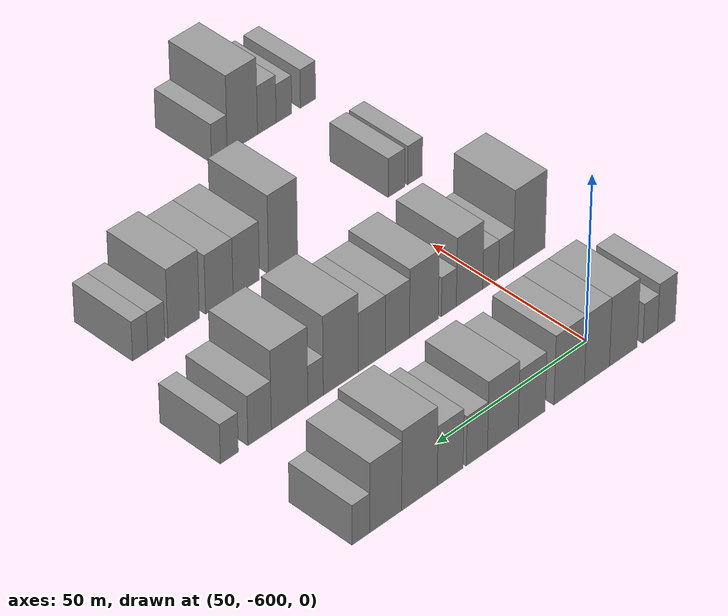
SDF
<sdf version="1.6">
 <world name="default">
  <model name="building_1">
   <static>1</static>
   <pose>50.0000 -616.9016 0 0.000000 0.000000 0.000000</pose>
   <link name="link">
    <pose>0 0 7.50 0 0 0</pose>
    <collision name="collision"><geometry><box><size>20.0000 6.1968 15.0000</size></box></geometry></collision>
    <visual name="visual">
     <cast_shadows>0</cast_shadows>
     <geometry><box><size>20.0000 6.1968 15.0000</size></box></geometry>
     <material>
      <script>
       <uri>model://grey_wall/materials/scripts</uri>
       <uri>model://grey_wall/materials/textures</uri>
       <name>vrc/grey_wall</name>
      </script>
     </material>
    </visual>
   </link>
  </model>
  <model name="building_2">
   <static>1</static>
   <pose>50.0000 -611.2636 0 0.000000 0.000000 0.000000</pose>
   <link name="link">
    <pose>0 0 6.00 0 0 0</pose>
    <collision name="collision"><geometry><box><size>20.0000 5.0791 12.0000</size></box></geometry></collision>
    <visual name="visual">
     <cast_shadows>0</cast_shadows>
     <geometry><box><size>20.0000 5.0791 12.0000</size></box></geometry>
     <material>
      <script>
       <uri>model://grey_wall/materials/scripts</uri>
       <uri>model://grey_wall/materials/textures</uri>
       <name>vrc/grey_wall</name>
      </script>
     </material>
    </visual>
   </link>
  </model>
  <model name="building_3">
   <static>1</static>
   <pose>50.0000 -601.9387 0 0.000000 0.000000 0.000000</pose>
   <link name="link">
    <pose>0 0 10.50 0 0 0</pose>
    <collision name="collision"><geometry><box><size>20.0000 9.5707 21.0000</size></box></geometry></collision>
    <visual name="visual">
     <cast_shadows>0</cast_shadows>
     <geometry><box><size>20.0000 9.5707 21.0000</size></box></geometry>
     <material>
      <script>
       <uri>model://grey_wall/materials/scripts</uri>
       <uri>model://grey_wall/materials/textures</uri>
       <name>vrc/grey_wall</name>
      </script>
     </material>
    </visual>
   </link>
  </model>
  <model name="building_4">
   <static>1</static>
   <pose>50.0000 -592.8870 0 0.000000 0.000000 0.000000</pose>
   <link name="link">
    <pose>0 0 10.50 0 0 0</pose>
    <collision name="collision"><geometry><box><size>20.0000 8.5327 21.0000</size></box></geometry></collision>
    <visual name="visual">
     <cast_shadows>0</cast_shadows>
     <geometry><box><size>20.0000 8.5327 21.0000</size></box></geometry>
     <material>
      <script>
       <uri>model://grey_wall/materials/scripts</uri>
       <uri>model://grey_wall/materials/textures</uri>
       <name>vrc/grey_wall</name>
      </script>
     </material>
    </visual>
   </link>
  </model>
  <model name="building_5">
   <static>1</static>
   <pose>50.0000 -583.4798 0 0.000000 0.000000 0.000000</pose>
   <link name="link">
    <pose>0 0 10.50 0 0 0</pose>
    <collision name="collision"><geometry><box><size>20.0000 10.2817 21.0000</size></box></geometry></collision>
    <visual name="visual">
     <cast_shadows>0</cast_shadows>
     <geometry><box><size>20.0000 10.2817 21.0000</size></box></geometry>
     <material>
      <script>
       <uri>model://grey_wall/materials/scripts</uri>
       <uri>model://grey_wall/materials/textures</uri>
       <name>vrc/grey_wall</name>
      </script>
     </material>
    </visual>
   </link>
  </model>
  <model name="building_6">
   <static>1</static>
   <pose>50.0000 -570.8567 0 0.000000 0.000000 0.000000</pose>
   <link name="link">
    <pose>0 0 9.00 0 0 0</pose>
    <collision name="collision"><geometry><box><size>20.0000 8.9645 18.0000</size></box></geometry></collision>
    <visual name="visual">
     <cast_shadows>0</cast_shadows>
     <geometry><box><size>20.0000 8.9645 18.0000</size></box></geometry>
     <material>
      <script>
       <uri>model://grey_wall/materials/scripts</uri>
       <uri>model://grey_wall/materials/textures</uri>
       <name>vrc/grey_wall</name>
      </script>
     </material>
    </visual>
   </link>
  </model>
  <model name="building_7">
   <static>1</static>
   <pose>50.0000 -561.2951 0 0.000000 0.000000 0.000000</pose>
   <link name="link">
    <pose>0 0 10.50 0 0 0</pose>
    <collision name="collision"><geometry><box><size>20.0000 10.1586 21.0000</size></box></geometry></collision>
    <visual name="visual">
     <cast_shadows>0</cast_shadows>
     <geometry><box><size>20.0000 10.1586 21.0000</size></box></geometry>
     <material>
      <script>
       <uri>model://grey_wall/materials/scripts</uri>
       <uri>model://grey_wall/materials/textures</uri>
       <name>vrc/grey_wall</name>
      </script>
     </material>
    </visual>
   </link>
  </model>
  <model name="building_8">
   <static>1</static>
   <pose>50.0000 -552.7246 0 0.000000 0.000000 0.000000</pose>
   <link name="link">
    <pose>0 0 7.50 0 0 0</pose>
    <collision name="collision"><geometry><box><size>20.0000 6.9825 15.0000</size></box></geometry></collision>
    <visual name="visual">
     <cast_shadows>0</cast_shadows>
     <geometry><box><size>20.0000 6.9825 15.0000</size></box></geometry>
     <material>
      <script>
       <uri>model://grey_wall/materials/scripts</uri>
       <uri>model://grey_wall/materials/textures</uri>
       <name>vrc/grey_wall</name>
      </script>
     </material>
    </visual>
   </link>
  </model>
  <model name="building_9">
   <static>1</static>
   <pose>50.0000 -544.0356 0 0.000000 0.000000 0.000000</pose>
   <link name="link">
    <pose>0 0 9.00 0 0 0</pose>
    <collision name="collision"><geometry><box><size>20.0000 8.3956 18.0000</size></box></geometry></collision>
    <visual name="visual">
     <cast_shadows>0</cast_shadows>
     <geometry><box><size>20.0000 8.3956 18.0000</size></box></geometry>
     <material>
      <script>
       <uri>model://grey_wall/materials/scripts</uri>
       <uri>model://grey_wall/materials/textures</uri>
       <name>vrc/grey_wall</name>
      </script>
     </material>
    </visual>
   </link>
  </model>
  <model name="building_10">
   <static>1</static>
   <pose>50.0000 -534.1240 0 0.000000 0.000000 0.000000</pose>
   <link name="link">
    <pose>0 0 12.00 0 0 0</pose>
    <collision name="collision"><geometry><box><size>20.0000 11.4277 24.0000</size></box></geometry></collision>
    <visual name="visual">
     <cast_shadows>0</cast_shadows>
     <geometry><box><size>20.0000 11.4277 24.0000</size></box></geometry>
     <material>
      <script>
       <uri>model://grey_wall/materials/scripts</uri>
       <uri>model://grey_wall/materials/textures</uri>
       <name>vrc/grey_wall</name>
      </script>
     </material>
    </visual>
   </link>
  </model>
  <model name="building_11">
   <static>1</static>
   <pose>50.0000 -523.3517 0 0.000000 0.000000 0.000000</pose>
   <link name="link">
    <pose>0 0 10.50 0 0 0</pose>
    <collision name="collision"><geometry><box><size>20.0000 10.1170 21.0000</size></box></geometry></collision>
    <visual name="visual">
     <cast_shadows>0</cast_shadows>
     <geometry><box><size>20.0000 10.1170 21.0000</size></box></geometry>
     <material>
      <script>
       <uri>model://grey_wall/materials/scripts</uri>
       <uri>model://grey_wall/materials/textures</uri>
       <name>vrc/grey_wall</name>
      </script>
     </material>
    </visual>
   </link>
  </model>
  <model name="building_12">
   <static>1</static>
   <pose>50.0000 -515.4805 0 0.000000 0.000000 0.000000</pose>
   <link name="link">
    <pose>0 0 6.00 0 0 0</pose>
    <collision name="collision"><geometry><box><size>20.0000 5.6252 12.0000</size></box></geometry></collision>
    <visual name="visual">
     <cast_shadows>0</cast_shadows>
     <geometry><box><size>20.0000 5.6252 12.0000</size></box></geometry>
     <material>
      <script>
       <uri>model://grey_wall/materials/scripts</uri>
       <uri>model://grey_wall/materials/textures</uri>
       <name>vrc/grey_wall</name>
      </script>
     </material>
    </visual>
   </link>
  </model>
  <model name="building_134">
   <static>1</static>
   <pose>90.0000 -612.5213 0 0.000000 0.000000 0.000000</pose>
   <link name="link">
    <pose>0 0 12.00 0 0 0</pose>
    <collision name="collision"><geometry><box><size>20.0000 10.9574 24.0000</size></box></geometry></collision>
    <visual name="visual">
     <cast_shadows>0</cast_shadows>
     <geometry><box><size>20.0000 10.9574 24.0000</size></box></geometry>
     <material>
      <script>
       <uri>model://grey_wall/materials/scripts</uri>
       <uri>model://grey_wall/materials/textures</uri>
       <name>vrc/grey_wall</name>
      </script>
     </material>
    </visual>
   </link>
  </model>
  <model name="building_135">
   <static>1</static>
   <pose>90.0000 -604.4865 0 0.000000 0.000000 0.000000</pose>
   <link name="link">
    <pose>0 0 6.00 0 0 0</pose>
    <collision name="collision"><geometry><box><size>20.0000 5.1121 12.0000</size></box></geometry></collision>
    <visual name="visual">
     <cast_shadows>0</cast_shadows>
     <geometry><box><size>20.0000 5.1121 12.0000</size></box></geometry>
     <material>
      <script>
       <uri>model://grey_wall/materials/scripts</uri>
       <uri>model://grey_wall/materials/textures</uri>
       <name>vrc/grey_wall</name>
      </script>
     </material>
    </visual>
   </link>
  </model>
  <model name="building_136">
   <static>1</static>
   <pose>90.0000 -599.1985 0 0.000000 0.000000 0.000000</pose>
   <link name="link">
    <pose>0 0 6.00 0 0 0</pose>
    <collision name="collision"><geometry><box><size>20.0000 5.4640 12.0000</size></box></geometry></collision>
    <visual name="visual">
     <cast_shadows>0</cast_shadows>
     <geometry><box><size>20.0000 5.4640 12.0000</size></box></geometry>
     <material>
      <script>
       <uri>model://grey_wall/materials/scripts</uri>
       <uri>model://grey_wall/materials/textures</uri>
       <name>vrc/grey_wall</name>
      </script>
     </material>
    </visual>
   </link>
  </model>
  <model name="building_137">
   <static>1</static>
   <pose>90.0000 -591.9716 0 0.000000 0.000000 0.000000</pose>
   <link name="link">
    <pose>0 0 10.50 0 0 0</pose>
    <collision name="collision"><geometry><box><size>20.0000 8.9897 21.0000</size></box></geometry></collision>
    <visual name="visual">
     <cast_shadows>0</cast_shadows>
     <geometry><box><size>20.0000 8.9897 21.0000</size></box></geometry>
     <material>
      <script>
       <uri>model://grey_wall/materials/scripts</uri>
       <uri>model://grey_wall/materials/textures</uri>
       <name>vrc/grey_wall</name>
      </script>
     </material>
    </visual>
   </link>
  </model>
  <model name="building_138">
   <static>1</static>
   <pose>90.0000 -584.9315 0 0.000000 0.000000 0.000000</pose>
   <link name="link">
    <pose>0 0 6.00 0 0 0</pose>
    <collision name="collision"><geometry><box><size>20.0000 5.0904 12.0000</size></box></geometry></collision>
    <visual name="visual">
     <cast_shadows>0</cast_shadows>
     <geometry><box><size>20.0000 5.0904 12.0000</size></box></geometry>
     <material>
      <script>
       <uri>model://grey_wall/materials/scripts</uri>
       <uri>model://grey_wall/materials/textures</uri>
       <name>vrc/grey_wall</name>
      </script>
     </material>
    </visual>
   </link>
  </model>
  <model name="building_139">
   <static>1</static>
   <pose>90.0000 -576.5448 0 0.000000 0.000000 0.000000</pose>
   <link name="link">
    <pose>0 0 10.50 0 0 0</pose>
    <collision name="collision"><geometry><box><size>20.0000 9.6830 21.0000</size></box></geometry></collision>
    <visual name="visual">
     <cast_shadows>0</cast_shadows>
     <geometry><box><size>20.0000 9.6830 21.0000</size></box></geometry>
     <material>
      <script>
       <uri>model://grey_wall/materials/scripts</uri>
       <uri>model://grey_wall/materials/textures</uri>
       <name>vrc/grey_wall</name>
      </script>
     </material>
    </visual>
   </link>
  </model>
  <model name="building_140">
   <static>1</static>
   <pose>90.0000 -567.6874 0 0.000000 0.000000 0.000000</pose>
   <link name="link">
    <pose>0 0 9.00 0 0 0</pose>
    <collision name="collision"><geometry><box><size>20.0000 8.0319 18.0000</size></box></geometry></collision>
    <visual name="visual">
     <cast_shadows>0</cast_shadows>
     <geometry><box><size>20.0000 8.0319 18.0000</size></box></geometry>
     <material>
      <script>
       <uri>model://grey_wall/materials/scripts</uri>
       <uri>model://grey_wall/materials/textures</uri>
       <name>vrc/grey_wall</name>
      </script>
     </material>
    </visual>
   </link>
  </model>
  <model name="building_141">
   <static>1</static>
   <pose>90.0000 -559.2264 0 0.000000 0.000000 0.000000</pose>
   <link name="link">
    <pose>0 0 9.00 0 0 0</pose>
    <collision name="collision"><geometry><box><size>20.0000 8.8902 18.0000</size></box></geometry></collision>
    <visual name="visual">
     <cast_shadows>0</cast_shadows>
     <geometry><box><size>20.0000 8.8902 18.0000</size></box></geometry>
     <material>
      <script>
       <uri>model://grey_wall/materials/scripts</uri>
       <uri>model://grey_wall/materials/textures</uri>
       <name>vrc/grey_wall</name>
      </script>
     </material>
    </visual>
   </link>
  </model>
  <model name="building_142">
   <static>1</static>
   <pose>90.0000 -549.0619 0 0.000000 0.000000 0.000000</pose>
   <link name="link">
    <pose>0 0 12.00 0 0 0</pose>
    <collision name="collision"><geometry><box><size>20.0000 11.4388 24.0000</size></box></geometry></collision>
    <visual name="visual">
     <cast_shadows>0</cast_shadows>
     <geometry><box><size>20.0000 11.4388 24.0000</size></box></geometry>
     <material>
      <script>
       <uri>model://grey_wall/materials/scripts</uri>
       <uri>model://grey_wall/materials/textures</uri>
       <name>vrc/grey_wall</name>
      </script>
     </material>
    </visual>
   </link>
  </model>
  <model name="building_143">
   <static>1</static>
   <pose>90.0000 -540.8584 0 0.000000 0.000000 0.000000</pose>
   <link name="link">
    <pose>0 0 6.00 0 0 0</pose>
    <collision name="collision"><geometry><box><size>20.0000 4.9681 12.0000</size></box></geometry></collision>
    <visual name="visual">
     <cast_shadows>0</cast_shadows>
     <geometry><box><size>20.0000 4.9681 12.0000</size></box></geometry>
     <material>
      <script>
       <uri>model://grey_wall/materials/scripts</uri>
       <uri>model://grey_wall/materials/textures</uri>
       <name>vrc/grey_wall</name>
      </script>
     </material>
    </visual>
   </link>
  </model>
  <model name="building_144">
   <static>1</static>
   <pose>90.0000 -532.4957 0 0.000000 0.000000 0.000000</pose>
   <link name="link">
    <pose>0 0 12.00 0 0 0</pose>
    <collision name="collision"><geometry><box><size>20.0000 11.7573 24.0000</size></box></geometry></collision>
    <visual name="visual">
     <cast_shadows>0</cast_shadows>
     <geometry><box><size>20.0000 11.7573 24.0000</size></box></geometry>
     <material>
      <script>
       <uri>model://grey_wall/materials/scripts</uri>
       <uri>model://grey_wall/materials/textures</uri>
       <name>vrc/grey_wall</name>
      </script>
     </material>
    </visual>
   </link>
  </model>
  <model name="building_145">
   <static>1</static>
   <pose>90.0000 -522.8952 0 0.000000 0.000000 0.000000</pose>
   <link name="link">
    <pose>0 0 7.50 0 0 0</pose>
    <collision name="collision"><geometry><box><size>20.0000 7.4438 15.0000</size></box></geometry></collision>
    <visual name="visual">
     <cast_shadows>0</cast_shadows>
     <geometry><box><size>20.0000 7.4438 15.0000</size></box></geometry>
     <material>
      <script>
       <uri>model://grey_wall/materials/scripts</uri>
       <uri>model://grey_wall/materials/textures</uri>
       <name>vrc/grey_wall</name>
      </script>
     </material>
    </visual>
   </link>
  </model>
  <model name="building_146">
   <static>1</static>
   <pose>90.0000 -513.3403 0 0.000000 0.000000 0.000000</pose>
   <link name="link">
    <pose>0 0 6.00 0 0 0</pose>
    <collision name="collision"><geometry><box><size>20.0000 5.6659 12.0000</size></box></geometry></collision>
    <visual name="visual">
     <cast_shadows>0</cast_shadows>
     <geometry><box><size>20.0000 5.6659 12.0000</size></box></geometry>
     <material>
      <script>
       <uri>model://grey_wall/materials/scripts</uri>
       <uri>model://grey_wall/materials/textures</uri>
       <name>vrc/grey_wall</name>
      </script>
     </material>
    </visual>
   </link>
  </model>
  <model name="building_286">
   <static>1</static>
   <pose>130.0000 -614.4628 0 0.000000 0.000000 0.000000</pose>
   <link name="link">
    <pose>0 0 6.00 0 0 0</pose>
    <collision name="collision"><geometry><box><size>20.0000 5.0744 12.0000</size></box></geometry></collision>
    <visual name="visual">
     <cast_shadows>0</cast_shadows>
     <geometry><box><size>20.0000 5.0744 12.0000</size></box></geometry>
     <material>
      <script>
       <uri>model://grey_wall/materials/scripts</uri>
       <uri>model://grey_wall/materials/textures</uri>
       <name>vrc/grey_wall</name>
      </script>
     </material>
    </visual>
   </link>
  </model>
  <model name="building_287">
   <static>1</static>
   <pose>130.0000 -608.0292 0 0.000000 0.000000 0.000000</pose>
   <link name="link">
    <pose>0 0 6.00 0 0 0</pose>
    <collision name="collision"><geometry><box><size>20.0000 5.7929 12.0000</size></box></geometry></collision>
    <visual name="visual">
     <cast_shadows>0</cast_shadows>
     <geometry><box><size>20.0000 5.7929 12.0000</size></box></geometry>
     <material>
      <script>
       <uri>model://grey_wall/materials/scripts</uri>
       <uri>model://grey_wall/materials/textures</uri>
       <name>vrc/grey_wall</name>
      </script>
     </material>
    </visual>
   </link>
  </model>
  <model name="building_288">
   <static>1</static>
   <pose>130.0000 -569.5436 0 0.000000 0.000000 0.000000</pose>
   <link name="link">
    <pose>0 0 12.00 0 0 0</pose>
    <collision name="collision"><geometry><box><size>20.0000 9.7261 24.0000</size></box></geometry></collision>
    <visual name="visual">
     <cast_shadows>0</cast_shadows>
     <geometry><box><size>20.0000 9.7261 24.0000</size></box></geometry>
     <material>
      <script>
       <uri>model://grey_wall/materials/scripts</uri>
       <uri>model://grey_wall/materials/textures</uri>
       <name>vrc/grey_wall</name>
      </script>
     </material>
    </visual>
   </link>
  </model>
  <model name="building_289">
   <static>1</static>
   <pose>130.0000 -557.3551 0 0.000000 0.000000 0.000000</pose>
   <link name="link">
    <pose>0 0 9.00 0 0 0</pose>
    <collision name="collision"><geometry><box><size>20.0000 8.6508 18.0000</size></box></geometry></collision>
    <visual name="visual">
     <cast_shadows>0</cast_shadows>
     <geometry><box><size>20.0000 8.6508 18.0000</size></box></geometry>
     <material>
      <script>
       <uri>model://grey_wall/materials/scripts</uri>
       <uri>model://grey_wall/materials/textures</uri>
       <name>vrc/grey_wall</name>
      </script>
     </material>
    </visual>
   </link>
  </model>
  <model name="building_290">
   <static>1</static>
   <pose>130.0000 -548.5409 0 0.000000 0.000000 0.000000</pose>
   <link name="link">
    <pose>0 0 9.00 0 0 0</pose>
    <collision name="collision"><geometry><box><size>20.0000 8.9777 18.0000</size></box></geometry></collision>
    <visual name="visual">
     <cast_shadows>0</cast_shadows>
     <geometry><box><size>20.0000 8.9777 18.0000</size></box></geometry>
     <material>
      <script>
       <uri>model://grey_wall/materials/scripts</uri>
       <uri>model://grey_wall/materials/textures</uri>
       <name>vrc/grey_wall</name>
      </script>
     </material>
    </visual>
   </link>
  </model>
  <model name="building_291">
   <static>1</static>
   <pose>130.0000 -536.9700 0 0.000000 0.000000 0.000000</pose>
   <link name="link">
    <pose>0 0 10.50 0 0 0</pose>
    <collision name="collision"><geometry><box><size>20.0000 10.1640 21.0000</size></box></geometry></collision>
    <visual name="visual">
     <cast_shadows>0</cast_shadows>
     <geometry><box><size>20.0000 10.1640 21.0000</size></box></geometry>
     <material>
      <script>
       <uri>model://grey_wall/materials/scripts</uri>
       <uri>model://grey_wall/materials/textures</uri>
       <name>vrc/grey_wall</name>
      </script>
     </material>
    </visual>
   </link>
  </model>
  <model name="building_292">
   <static>1</static>
   <pose>130.0000 -528.1808 0 0.000000 0.000000 0.000000</pose>
   <link name="link">
    <pose>0 0 6.00 0 0 0</pose>
    <collision name="collision"><geometry><box><size>20.0000 5.4144 12.0000</size></box></geometry></collision>
    <visual name="visual">
     <cast_shadows>0</cast_shadows>
     <geometry><box><size>20.0000 5.4144 12.0000</size></box></geometry>
     <material>
      <script>
       <uri>model://grey_wall/materials/scripts</uri>
       <uri>model://grey_wall/materials/textures</uri>
       <name>vrc/grey_wall</name>
      </script>
     </material>
    </visual>
   </link>
  </model>
  <model name="building_293">
   <static>1</static>
   <pose>130.0000 -523.0255 0 0.000000 0.000000 0.000000</pose>
   <link name="link">
    <pose>0 0 6.00 0 0 0</pose>
    <collision name="collision"><geometry><box><size>20.0000 4.8963 12.0000</size></box></geometry></collision>
    <visual name="visual">
     <cast_shadows>0</cast_shadows>
     <geometry><box><size>20.0000 4.8963 12.0000</size></box></geometry>
     <material>
      <script>
       <uri>model://grey_wall/materials/scripts</uri>
       <uri>model://grey_wall/materials/textures</uri>
       <name>vrc/grey_wall</name>
      </script>
     </material>
    </visual>
   </link>
  </model>
  <model name="building_415">
   <static>1</static>
   <pose>170.0000 -617.3420 0 0.000000 0.000000 0.000000</pose>
   <link name="link">
    <pose>0 0 6.00 0 0 0</pose>
    <collision name="collision"><geometry><box><size>20.0000 5.3160 12.0000</size></box></geometry></collision>
    <visual name="visual">
     <cast_shadows>0</cast_shadows>
     <geometry><box><size>20.0000 5.3160 12.0000</size></box></geometry>
     <material>
      <script>
       <uri>model://grey_wall/materials/scripts</uri>
       <uri>model://grey_wall/materials/textures</uri>
       <name>vrc/grey_wall</name>
      </script>
     </material>
    </visual>
   </link>
  </model>
  <model name="building_416">
   <static>1</static>
   <pose>170.0000 -608.9868 0 0.000000 0.000000 0.000000</pose>
   <link name="link">
    <pose>0 0 6.00 0 0 0</pose>
    <collision name="collision"><geometry><box><size>20.0000 5.3945 12.0000</size></box></geometry></collision>
    <visual name="visual">
     <cast_shadows>0</cast_shadows>
     <geometry><box><size>20.0000 5.3945 12.0000</size></box></geometry>
     <material>
      <script>
       <uri>model://grey_wall/materials/scripts</uri>
       <uri>model://grey_wall/materials/textures</uri>
       <name>vrc/grey_wall</name>
      </script>
     </material>
    </visual>
   </link>
  </model>
  <model name="building_417">
   <static>1</static>
   <pose>170.0000 -603.0850 0 0.000000 0.000000 0.000000</pose>
   <link name="link">
    <pose>0 0 7.50 0 0 0</pose>
    <collision name="collision"><geometry><box><size>20.0000 6.4092 15.0000</size></box></geometry></collision>
    <visual name="visual">
     <cast_shadows>0</cast_shadows>
     <geometry><box><size>20.0000 6.4092 15.0000</size></box></geometry>
     <material>
      <script>
       <uri>model://grey_wall/materials/scripts</uri>
       <uri>model://grey_wall/materials/textures</uri>
       <name>vrc/grey_wall</name>
      </script>
     </material>
    </visual>
   </link>
  </model>
  <model name="building_418">
   <static>1</static>
   <pose>170.0000 -594.6996 0 0.000000 0.000000 0.000000</pose>
   <link name="link">
    <pose>0 0 12.00 0 0 0</pose>
    <collision name="collision"><geometry><box><size>20.0000 10.3617 24.0000</size></box></geometry></collision>
    <visual name="visual">
     <cast_shadows>0</cast_shadows>
     <geometry><box><size>20.0000 10.3617 24.0000</size></box></geometry>
     <material>
      <script>
       <uri>model://grey_wall/materials/scripts</uri>
       <uri>model://grey_wall/materials/textures</uri>
       <name>vrc/grey_wall</name>
      </script>
     </material>
    </visual>
   </link>
  </model>
  <model name="building_419">
   <static>1</static>
   <pose>170.0000 -586.8548 0 0.000000 0.000000 0.000000</pose>
   <link name="link">
    <pose>0 0 6.00 0 0 0</pose>
    <collision name="collision"><geometry><box><size>20.0000 5.3279 12.0000</size></box></geometry></collision>
    <visual name="visual">
     <cast_shadows>0</cast_shadows>
     <geometry><box><size>20.0000 5.3279 12.0000</size></box></geometry>
     <material>
      <script>
       <uri>model://grey_wall/materials/scripts</uri>
       <uri>model://grey_wall/materials/textures</uri>
       <name>vrc/grey_wall</name>
      </script>
     </material>
    </visual>
   </link>
  </model>
 </world>
</sdf>
